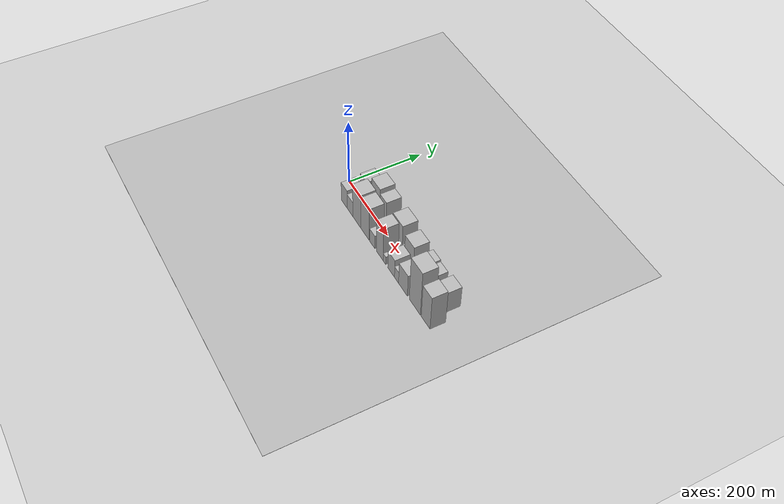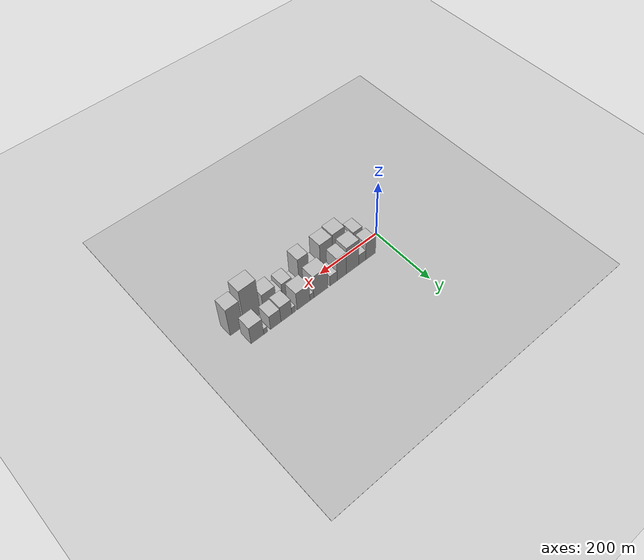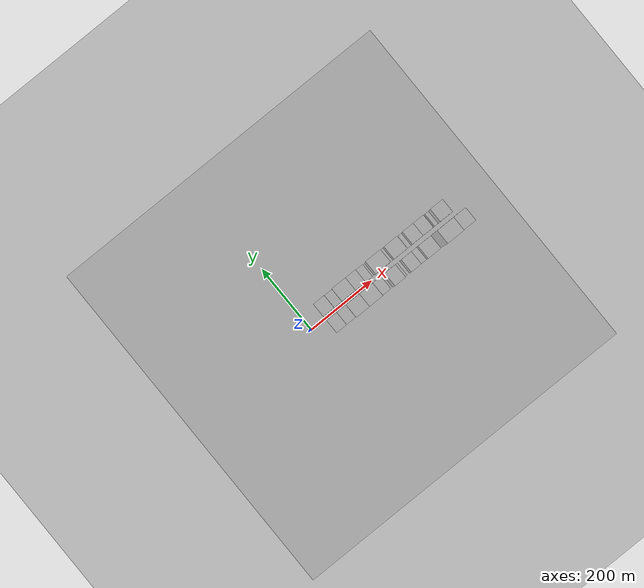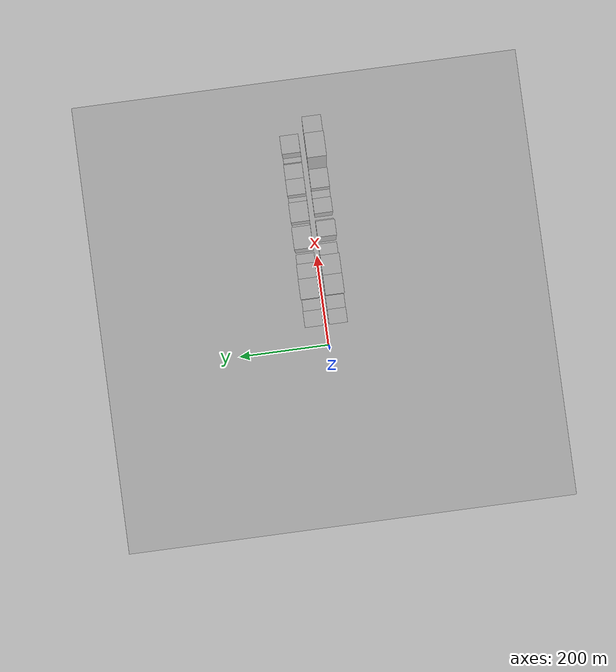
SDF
<?xml version="1.0" encoding="utf-8"?>

<sdf version="1.6">

   <world name="default">

      <gui fullscreen="0">

         <camera name="user_camera">

            <pose>-15 0 4.57585 0 0 0</pose>

            <view_controller>orbit</view_controller>

         </camera>

      </gui>

      <scene>

         <sky>

           <clouds>

             <speed>12</speed>

           </clouds>

         </sky>

         <ambient>0.4 0.4 0.4 1</ambient>

         <background>0.7 0.7 0.7 1</background>

         <shadows>1</shadows>

      </scene>

      <gravity>0 0 -9.8066</gravity>

      <magnetic_field>6e-06 2.3e-05 -4.2e-05</magnetic_field>

      <physics default="0" name="default_physics" type="ode">

         <ode>

            <solver>

               <type>quick</type>

               <iters>10</iters>

               <sor>1.0</sor>

               <use_dynamic_moi_rescaling>0</use_dynamic_moi_rescaling>

            </solver>

            <constraints>

               <cfm>0</cfm>

               <erp>0.2</erp>

               <contact_max_correcting_vel>100</contact_max_correcting_vel>

               <contact_surface_layer>0.001</contact_surface_layer>

            </constraints>

         </ode>

         <max_step_size>0.004</max_step_size>

         <real_time_factor>1</real_time_factor>

         <real_time_update_rate>250</real_time_update_rate>

      </physics>

      <light name="sun" type="directional">

         <cast_shadows>1</cast_shadows>

         <pose>0 0 10 0 0 0</pose>

         <diffuse>0.8 0.8 0.8 1</diffuse>

         <specular>0.2 0.2 0.2 1</specular>

         <attenuation>

            <range>1000</range>

            <constant>0.9</constant>

            <linear>0.01</linear>

            <quadratic>0.001</quadratic>

         </attenuation>

         <direction>-0.5 0.1 -0.9</direction>

      </light>

      <include>

         <name>ground_plane_1</name>

         <uri>model://HANNAS_ground_plane</uri>

         <pose>0 0 0  0 0 0</pose>

      </include>

      <include>

         <name>ground_plane_2</name>

         <uri>model://HANNAS_ground_plane</uri>

         <pose>100 0 0  0 0 0</pose>

      </include>

      <model name="building_1">

         <static>1</static>

         <pose frame="">64.3945 26.0000 0 0.000000 0.000000 1.570796</pose>

         <link name="link">

            <pose frame="">0 0 34.50 0 0 0</pose>

            <collision name="collision">

               <geometry>

                  <box>

                     <size>40.0000 34.7891 69.0000</size>

                  </box>

               </geometry>

               <max_contacts>10</max_contacts>

               <surface>

                  <contact>

                     <ode/>

                  </contact>

                  <bounce/>

                  <friction>

                     <torsional>

                        <ode/>

                     </torsional>

                     <ode/>

                  </friction>

               </surface>

            </collision>

            <visual name="visual">

               <cast_shadows>0</cast_shadows>

               <geometry>

                  <box>

                     <size>40.0000 34.7891 69.0000</size>

                  </box>

               </geometry>

               <material>

                  <script>

                     <uri>model://HANNAS_wall/materials/scripts</uri>

                     <uri>model://HANNAS_wall/materials/textures</uri>

                     <name>vrc/HANNAS_wall</name>

                  </script>

               </material>

            </visual>

            <self_collide>0</self_collide>

            <enable_wind>0</enable_wind>

            <kinematic>0</kinematic>

         </link>

      </model>

      <model name="building_2">

         <static>1</static>

         <pose frame="">94.0296 26.0000 0 0.000000 0.000000 1.570796</pose>

         <link name="link">

            <pose frame="">0 0 21.00 0 0 0</pose>

            <collision name="collision">

               <geometry>

                  <box>

                     <size>40.0000 24.4811 42.0000</size>

                  </box>

               </geometry>

               <max_contacts>10</max_contacts>

               <surface>

                  <contact>

                     <ode/>

                  </contact>

                  <bounce/>

                  <friction>

                     <torsional>

                        <ode/>

                     </torsional>

                     <ode/>

                  </friction>

               </surface>

            </collision>

            <visual name="visual">

               <cast_shadows>0</cast_shadows>

               <geometry>

                  <box>

                     <size>40.0000 24.4811 42.0000</size>

                  </box>

               </geometry>

               <material>

                  <script>

                     <uri>model://HANNAS_wall/materials/scripts</uri>

                     <uri>model://HANNAS_wall/materials/textures</uri>

                     <name>vrc/HANNAS_wall</name>

                  </script>

               </material>

            </visual>

            <self_collide>0</self_collide>

            <enable_wind>0</enable_wind>

            <kinematic>0</kinematic>

         </link>

      </model>

      <model name="building_3">

         <static>1</static>

         <pose frame="">127.7271 26.0000 0 0.000000 0.000000 1.570796</pose>

         <link name="link">

            <pose frame="">0 0 54.00 0 0 0</pose>

            <collision name="collision">

               <geometry>

                  <box>

                     <size>40.0000 42.9138 108.0000</size>

                  </box>

               </geometry>

               <max_contacts>10</max_contacts>

               <surface>

                  <contact>

                     <ode/>

                  </contact>

                  <bounce/>

                  <friction>

                     <torsional>

                        <ode/>

                     </torsional>

                     <ode/>

                  </friction>

               </surface>

            </collision>

            <visual name="visual">

               <cast_shadows>0</cast_shadows>

               <geometry>

                  <box>

                     <size>40.0000 42.9138 108.0000</size>

                  </box>

               </geometry>

               <material>

                  <script>

                     <uri>model://HANNAS_wall/materials/scripts</uri>

                     <uri>model://HANNAS_wall/materials/textures</uri>

                     <name>vrc/HANNAS_wall</name>

                  </script>

               </material>

            </visual>

            <self_collide>0</self_collide>

            <enable_wind>0</enable_wind>

            <kinematic>0</kinematic>

         </link>

      </model>

      <model name="building_4">

         <static>1</static>

         <pose frame="">165.2172 26.0000 0 0.000000 0.000000 1.570796</pose>

         <link name="link">

            <pose frame="">0 0 46.50 0 0 0</pose>

            <collision name="collision">

               <geometry>

                  <box>

                     <size>40.0000 32.0664 93.0000</size>

                  </box>

               </geometry>

               <max_contacts>10</max_contacts>

               <surface>

                  <contact>

                     <ode/>

                  </contact>

                  <bounce/>

                  <friction>

                     <torsional>

                        <ode/>

                     </torsional>

                     <ode/>

                  </friction>

               </surface>

            </collision>

            <visual name="visual">

               <cast_shadows>0</cast_shadows>

               <geometry>

                  <box>

                     <size>40.0000 32.0664 93.0000</size>

                  </box>

               </geometry>

               <material>

                  <script>

                     <uri>model://HANNAS_wall/materials/scripts</uri>

                     <uri>model://HANNAS_wall/materials/textures</uri>

                     <name>vrc/HANNAS_wall</name>

                  </script>

               </material>

            </visual>

            <self_collide>0</self_collide>

            <enable_wind>0</enable_wind>

            <kinematic>0</kinematic>

         </link>

      </model>

      <model name="building_5">

         <static>1</static>

         <pose frame="">193.4105 26.0000 0 0.000000 0.000000 1.570796</pose>

         <link name="link">

            <pose frame="">0 0 21.00 0 0 0</pose>

            <collision name="collision">

               <geometry>

                  <box>

                     <size>40.0000 24.3203 42.0000</size>

                  </box>

               </geometry>

               <max_contacts>10</max_contacts>

               <surface>

                  <contact>

                     <ode/>

                  </contact>

                  <bounce/>

                  <friction>

                     <torsional>

                        <ode/>

                     </torsional>

                     <ode/>

                  </friction>

               </surface>

            </collision>

            <visual name="visual">

               <cast_shadows>0</cast_shadows>

               <geometry>

                  <box>

                     <size>40.0000 24.3203 42.0000</size>

                  </box>

               </geometry>

               <material>

                  <script>

                     <uri>model://HANNAS_wall/materials/scripts</uri>

                     <uri>model://HANNAS_wall/materials/textures</uri>

                     <name>vrc/HANNAS_wall</name>

                  </script>

               </material>

            </visual>

            <self_collide>0</self_collide>

            <enable_wind>0</enable_wind>

            <kinematic>0</kinematic>

         </link>

      </model>

      <model name="building_6">

         <static>1</static>

         <pose frame="">236.4170 26.0000 0 0.000000 0.000000 1.570796</pose>

         <link name="link">

            <pose frame="">0 0 45.00 0 0 0</pose>

            <collision name="collision">

               <geometry>

                  <box>

                     <size>40.0000 47.6927 90.0000</size>

                  </box>

               </geometry>

               <max_contacts>10</max_contacts>

               <surface>

                  <contact>

                     <ode/>

                  </contact>

                  <bounce/>

                  <friction>

                     <torsional>

                        <ode/>

                     </torsional>

                     <ode/>

                  </friction>

               </surface>

            </collision>

            <visual name="visual">

               <cast_shadows>0</cast_shadows>

               <geometry>

                  <box>

                     <size>40.0000 47.6927 90.0000</size>

                  </box>

               </geometry>

               <material>

                  <script>

                     <uri>model://HANNAS_wall/materials/scripts</uri>

                     <uri>model://HANNAS_wall/materials/textures</uri>

                     <name>vrc/HANNAS_wall</name>

                  </script>

               </material>

            </visual>

            <self_collide>0</self_collide>

            <enable_wind>0</enable_wind>

            <kinematic>0</kinematic>

         </link>

      </model>

      <model name="building_7">

         <static>1</static>

         <pose frame="">266.1805 26.0000 0 0.000000 0.000000 1.570796</pose>

         <link name="link">

            <pose frame="">0 0 13.50 0 0 0</pose>

            <collision name="collision">

               <geometry>

                  <box>

                     <size>40.0000 11.8342 27.0000</size>

                  </box>

               </geometry>

               <max_contacts>10</max_contacts>

               <surface>

                  <contact>

                     <ode/>

                  </contact>

                  <bounce/>

                  <friction>

                     <torsional>

                        <ode/>

                     </torsional>

                     <ode/>

                  </friction>

               </surface>

            </collision>

            <visual name="visual">

               <cast_shadows>0</cast_shadows>

               <geometry>

                  <box>

                     <size>40.0000 11.8342 27.0000</size>

                  </box>

               </geometry>

               <material>

                  <script>

                     <uri>model://HANNAS_wall/materials/scripts</uri>

                     <uri>model://HANNAS_wall/materials/textures</uri>

                     <name>vrc/HANNAS_wall</name>

                  </script>

               </material>

            </visual>

            <self_collide>0</self_collide>

            <enable_wind>0</enable_wind>

            <kinematic>0</kinematic>

         </link>

      </model>

      <model name="building_8">

         <static>1</static>

         <pose frame="">293.5687 26.0000 0 0.000000 0.000000 1.570796</pose>

         <link name="link">

            <pose frame="">0 0 36.00 0 0 0</pose>

            <collision name="collision">

               <geometry>

                  <box>

                     <size>40.0000 42.9422 72.0000</size>

                  </box>

               </geometry>

               <max_contacts>10</max_contacts>

               <surface>

                  <contact>

                     <ode/>

                  </contact>

                  <bounce/>

                  <friction>

                     <torsional>

                        <ode/>

                     </torsional>

                     <ode/>

                  </friction>

               </surface>

            </collision>

            <visual name="visual">

               <cast_shadows>0</cast_shadows>

               <geometry>

                  <box>

                     <size>40.0000 42.9422 72.0000</size>

                  </box>

               </geometry>

               <material>

                  <script>

                     <uri>model://HANNAS_wall/materials/scripts</uri>

                     <uri>model://HANNAS_wall/materials/textures</uri>

                     <name>vrc/HANNAS_wall</name>

                  </script>

               </material>

            </visual>

            <self_collide>0</self_collide>

            <enable_wind>0</enable_wind>

            <kinematic>0</kinematic>

         </link>

      </model>

      <model name="building_9">

         <static>1</static>

         <pose frame="">325.8712 26.0000 0 0.000000 0.000000 1.570796</pose>

         <link name="link">

            <pose frame="">0 0 13.50 0 0 0</pose>

            <collision name="collision">

               <geometry>

                  <box>

                     <size>40.0000 11.6629 27.0000</size>

                  </box>

               </geometry>

               <max_contacts>10</max_contacts>

               <surface>

                  <contact>

                     <ode/>

                  </contact>

                  <bounce/>

                  <friction>

                     <torsional>

                        <ode/>

                     </torsional>

                     <ode/>

                  </friction>

               </surface>

            </collision>

            <visual name="visual">

               <cast_shadows>0</cast_shadows>

               <geometry>

                  <box>

                     <size>40.0000 11.6629 27.0000</size>

                  </box>

               </geometry>

               <material>

                  <script>

                     <uri>model://HANNAS_wall/materials/scripts</uri>

                     <uri>model://HANNAS_wall/materials/textures</uri>

                     <name>vrc/HANNAS_wall</name>

                  </script>

               </material>

            </visual>

            <self_collide>0</self_collide>

            <enable_wind>0</enable_wind>

            <kinematic>0</kinematic>

         </link>

      </model>

      <model name="building_10">

         <static>1</static>

         <pose frame="">349.0239 26.0000 0 0.000000 0.000000 1.570796</pose>

         <link name="link">

            <pose frame="">0 0 31.50 0 0 0</pose>

            <collision name="collision">

               <geometry>

                  <box>

                     <size>40.0000 34.6425 63.0000</size>

                  </box>

               </geometry>

               <max_contacts>10</max_contacts>

               <surface>

                  <contact>

                     <ode/>

                  </contact>

                  <bounce/>

                  <friction>

                     <torsional>

                        <ode/>

                     </torsional>

                     <ode/>

                  </friction>

               </surface>

            </collision>

            <visual name="visual">

               <cast_shadows>0</cast_shadows>

               <geometry>

                  <box>

                     <size>40.0000 34.6425 63.0000</size>

                  </box>

               </geometry>

               <material>

                  <script>

                     <uri>model://HANNAS_wall/materials/scripts</uri>

                     <uri>model://HANNAS_wall/materials/textures</uri>

                     <name>vrc/HANNAS_wall</name>

                  </script>

               </material>

            </visual>

            <self_collide>0</self_collide>

            <enable_wind>0</enable_wind>

            <kinematic>0</kinematic>

         </link>

      </model>

      <model name="building_11">

         <static>1</static>

         <pose frame="">383.0467 26.0000 0 0.000000 0.000000 1.570796</pose>

         <link name="link">

            <pose frame="">0 0 28.50 0 0 0</pose>

            <collision name="collision">

               <geometry>

                  <box>

                     <size>40.0000 33.4032 57.0000</size>

                  </box>

               </geometry>

               <max_contacts>10</max_contacts>

               <surface>

                  <contact>

                     <ode/>

                  </contact>

                  <bounce/>

                  <friction>

                     <torsional>

                        <ode/>

                     </torsional>

                     <ode/>

                  </friction>

               </surface>

            </collision>

            <visual name="visual">

               <cast_shadows>0</cast_shadows>

               <geometry>

                  <box>

                     <size>40.0000 33.4032 57.0000</size>

                  </box>

               </geometry>

               <material>

                  <script>

                     <uri>model://HANNAS_wall/materials/scripts</uri>

                     <uri>model://HANNAS_wall/materials/textures</uri>

                     <name>vrc/HANNAS_wall</name>

                  </script>

               </material>

            </visual>

            <self_collide>0</self_collide>

            <enable_wind>0</enable_wind>

            <kinematic>0</kinematic>

         </link>

      </model>

      <model name="building_12">

         <static>1</static>

         <pose frame="">414.4743 26.0000 0 0.000000 0.000000 1.570796</pose>

         <link name="link">

            <pose frame="">0 0 12.00 0 0 0</pose>

            <collision name="collision">

               <geometry>

                  <box>

                     <size>40.0000 11.4518 24.0000</size>

                  </box>

               </geometry>

               <max_contacts>10</max_contacts>

               <surface>

                  <contact>

                     <ode/>

                  </contact>

                  <bounce/>

                  <friction>

                     <torsional>

                        <ode/>

                     </torsional>

                     <ode/>

                  </friction>

               </surface>

            </collision>

            <visual name="visual">

               <cast_shadows>0</cast_shadows>

               <geometry>

                  <box>

                     <size>40.0000 11.4518 24.0000</size>

                  </box>

               </geometry>

               <material>

                  <script>

                     <uri>model://HANNAS_wall/materials/scripts</uri>

                     <uri>model://HANNAS_wall/materials/textures</uri>

                     <name>vrc/HANNAS_wall</name>

                  </script>

               </material>

            </visual>

            <self_collide>0</self_collide>

            <enable_wind>0</enable_wind>

            <kinematic>0</kinematic>

         </link>

      </model>

      <model name="building_13">

         <static>1</static>

         <pose frame="">439.9525 26.0000 0 0.000000 0.000000 1.570796</pose>

         <link name="link">

            <pose frame="">0 0 34.50 0 0 0</pose>

            <collision name="collision">

               <geometry>

                  <box>

                     <size>40.0000 39.5047 69.0000</size>

                  </box>

               </geometry>

               <max_contacts>10</max_contacts>

               <surface>

                  <contact>

                     <ode/>

                  </contact>

                  <bounce/>

                  <friction>

                     <torsional>

                        <ode/>

                     </torsional>

                     <ode/>

                  </friction>

               </surface>

            </collision>

            <visual name="visual">

               <cast_shadows>0</cast_shadows>

               <geometry>

                  <box>

                     <size>40.0000 39.5047 69.0000</size>

                  </box>

               </geometry>

               <material>

                  <script>

                     <uri>model://HANNAS_wall/materials/scripts</uri>

                     <uri>model://HANNAS_wall/materials/textures</uri>

                     <name>vrc/HANNAS_wall</name>

                  </script>

               </material>

            </visual>

            <self_collide>0</self_collide>

            <enable_wind>0</enable_wind>

            <kinematic>0</kinematic>

         </link>

      </model>

      <model name="building_14">

         <static>1</static>

         <pose frame="">63.0424 -26.0000 0 0.000000 0.000000 1.570796</pose>

         <link name="link">

            <pose frame="">0 0 31.50 0 0 0</pose>

            <collision name="collision">

               <geometry>

                  <box>

                     <size>40.0000 32.0847 63.0000</size>

                  </box>

               </geometry>

               <max_contacts>10</max_contacts>

               <surface>

                  <contact>

                     <ode/>

                  </contact>

                  <bounce/>

                  <friction>

                     <torsional>

                        <ode/>

                     </torsional>

                     <ode/>

                  </friction>

               </surface>

            </collision>

            <visual name="visual">

               <cast_shadows>0</cast_shadows>

               <geometry>

                  <box>

                     <size>40.0000 32.0847 63.0000</size>

                  </box>

               </geometry>

               <material>

                  <script>

                     <uri>model://HANNAS_wall/materials/scripts</uri>

                     <uri>model://HANNAS_wall/materials/textures</uri>

                     <name>vrc/HANNAS_wall</name>

                  </script>

               </material>

            </visual>

            <self_collide>0</self_collide>

            <enable_wind>0</enable_wind>

            <kinematic>0</kinematic>

         </link>

      </model>

      <model name="building_15">

         <static>1</static>

         <pose frame="">93.8723 -26.0000 0 0.000000 0.000000 1.570796</pose>

         <link name="link">

            <pose frame="">0 0 25.50 0 0 0</pose>

            <collision name="collision">

               <geometry>

                  <box>

                     <size>40.0000 29.5751 51.0000</size>

                  </box>

               </geometry>

               <max_contacts>10</max_contacts>

               <surface>

                  <contact>

                     <ode/>

                  </contact>

                  <bounce/>

                  <friction>

                     <torsional>

                        <ode/>

                     </torsional>

                     <ode/>

                  </friction>

               </surface>

            </collision>

            <visual name="visual">

               <cast_shadows>0</cast_shadows>

               <geometry>

                  <box>

                     <size>40.0000 29.5751 51.0000</size>

                  </box>

               </geometry>

               <material>

                  <script>

                     <uri>model://HANNAS_wall/materials/scripts</uri>

                     <uri>model://HANNAS_wall/materials/textures</uri>

                     <name>vrc/HANNAS_wall</name>

                  </script>

               </material>

            </visual>

            <self_collide>0</self_collide>

            <enable_wind>0</enable_wind>

            <kinematic>0</kinematic>

         </link>

      </model>

      <model name="building_16">

         <static>1</static>

         <pose frame="">129.6067 -26.0000 0 0.000000 0.000000 1.570796</pose>

         <link name="link">

            <pose frame="">0 0 57.00 0 0 0</pose>

            <collision name="collision">

               <geometry>

                  <box>

                     <size>40.0000 41.8939 114.0000</size>

                  </box>

               </geometry>

               <max_contacts>10</max_contacts>

               <surface>

                  <contact>

                     <ode/>

                  </contact>

                  <bounce/>

                  <friction>

                     <torsional>

                        <ode/>

                     </torsional>

                     <ode/>

                  </friction>

               </surface>

            </collision>

            <visual name="visual">

               <cast_shadows>0</cast_shadows>

               <geometry>

                  <box>

                     <size>40.0000 41.8939 114.0000</size>

                  </box>

               </geometry>

               <material>

                  <script>

                     <uri>model://HANNAS_wall/materials/scripts</uri>

                     <uri>model://HANNAS_wall/materials/textures</uri>

                     <name>vrc/HANNAS_wall</name>

                  </script>

               </material>

            </visual>

            <self_collide>0</self_collide>

            <enable_wind>0</enable_wind>

            <kinematic>0</kinematic>

         </link>

      </model>

      <model name="building_17">

         <static>1</static>

         <pose frame="">171.5663 -26.0000 0 0.000000 0.000000 1.570796</pose>

         <link name="link">

            <pose frame="">0 0 54.00 0 0 0</pose>

            <collision name="collision">

               <geometry>

                  <box>

                     <size>40.0000 42.0252 108.0000</size>

                  </box>

               </geometry>

               <max_contacts>10</max_contacts>

               <surface>

                  <contact>

                     <ode/>

                  </contact>

                  <bounce/>

                  <friction>

                     <torsional>

                        <ode/>

                     </torsional>

                     <ode/>

                  </friction>

               </surface>

            </collision>

            <visual name="visual">

               <cast_shadows>0</cast_shadows>

               <geometry>

                  <box>

                     <size>40.0000 42.0252 108.0000</size>

                  </box>

               </geometry>

               <material>

                  <script>

                     <uri>model://HANNAS_wall/materials/scripts</uri>

                     <uri>model://HANNAS_wall/materials/textures</uri>

                     <name>vrc/HANNAS_wall</name>

                  </script>

               </material>

            </visual>

            <self_collide>0</self_collide>

            <enable_wind>0</enable_wind>

            <kinematic>0</kinematic>

         </link>

      </model>

      <model name="building_18">

         <static>1</static>

         <pose frame="">208.8140 -26.0000 0 0.000000 0.000000 1.570796</pose>

         <link name="link">

            <pose frame="">0 0 22.50 0 0 0</pose>

            <collision name="collision">

               <geometry>

                  <box>

                     <size>40.0000 26.4703 45.0000</size>

                  </box>

               </geometry>

               <max_contacts>10</max_contacts>

               <surface>

                  <contact>

                     <ode/>

                  </contact>

                  <bounce/>

                  <friction>

                     <torsional>

                        <ode/>

                     </torsional>

                     <ode/>

                  </friction>

               </surface>

            </collision>

            <visual name="visual">

               <cast_shadows>0</cast_shadows>

               <geometry>

                  <box>

                     <size>40.0000 26.4703 45.0000</size>

                  </box>

               </geometry>

               <material>

                  <script>

                     <uri>model://HANNAS_wall/materials/scripts</uri>

                     <uri>model://HANNAS_wall/materials/textures</uri>

                     <name>vrc/HANNAS_wall</name>

                  </script>

               </material>

            </visual>

            <self_collide>0</self_collide>

            <enable_wind>0</enable_wind>

            <kinematic>0</kinematic>

         </link>

      </model>

      <model name="building_19">

         <static>1</static>

         <pose frame="">246.8575 -26.0000 0 0.000000 0.000000 1.570796</pose>

         <link name="link">

            <pose frame="">0 0 55.50 0 0 0</pose>

            <collision name="collision">

               <geometry>

                  <box>

                     <size>40.0000 33.6168 111.0000</size>

                  </box>

               </geometry>

               <max_contacts>10</max_contacts>

               <surface>

                  <contact>

                     <ode/>

                  </contact>

                  <bounce/>

                  <friction>

                     <torsional>

                        <ode/>

                     </torsional>

                     <ode/>

                  </friction>

               </surface>

            </collision>

            <visual name="visual">

               <cast_shadows>0</cast_shadows>

               <geometry>

                  <box>

                     <size>40.0000 33.6168 111.0000</size>

                  </box>

               </geometry>

               <material>

                  <script>

                     <uri>model://HANNAS_wall/materials/scripts</uri>

                     <uri>model://HANNAS_wall/materials/textures</uri>

                     <name>vrc/HANNAS_wall</name>

                  </script>

               </material>

            </visual>

            <self_collide>0</self_collide>

            <enable_wind>0</enable_wind>

            <kinematic>0</kinematic>

         </link>

      </model>

      <model name="building_20">

         <static>1</static>

         <pose frame="">269.9512 -26.0000 0 0.000000 0.000000 1.570796</pose>

         <link name="link">

            <pose frame="">0 0 13.50 0 0 0</pose>

            <collision name="collision">

               <geometry>

                  <box>

                     <size>40.0000 12.5706 27.0000</size>

                  </box>

               </geometry>

               <max_contacts>10</max_contacts>

               <surface>

                  <contact>

                     <ode/>

                  </contact>

                  <bounce/>

                  <friction>

                     <torsional>

                        <ode/>

                     </torsional>

                     <ode/>

                  </friction>

               </surface>

            </collision>

            <visual name="visual">

               <cast_shadows>0</cast_shadows>

               <geometry>

                  <box>

                     <size>40.0000 12.5706 27.0000</size>

                  </box>

               </geometry>

               <material>

                  <script>

                     <uri>model://HANNAS_wall/materials/scripts</uri>

                     <uri>model://HANNAS_wall/materials/textures</uri>

                     <name>vrc/HANNAS_wall</name>

                  </script>

               </material>

            </visual>

            <self_collide>0</self_collide>

            <enable_wind>0</enable_wind>

            <kinematic>0</kinematic>

         </link>

      </model>

      <model name="building_21">

         <static>1</static>

         <pose frame="">302.5528 -26.0000 0 0.000000 0.000000 1.570796</pose>

         <link name="link">

            <pose frame="">0 0 30.00 0 0 0</pose>

            <collision name="collision">

               <geometry>

                  <box>

                     <size>40.0000 32.6326 60.0000</size>

                  </box>

               </geometry>

               <max_contacts>10</max_contacts>

               <surface>

                  <contact>

                     <ode/>

                  </contact>

                  <bounce/>

                  <friction>

                     <torsional>

                        <ode/>

                     </torsional>

                     <ode/>

                  </friction>

               </surface>

            </collision>

            <visual name="visual">

               <cast_shadows>0</cast_shadows>

               <geometry>

                  <box>

                     <size>40.0000 32.6326 60.0000</size>

                  </box>

               </geometry>

               <material>

                  <script>

                     <uri>model://HANNAS_wall/materials/scripts</uri>

                     <uri>model://HANNAS_wall/materials/textures</uri>

                     <name>vrc/HANNAS_wall</name>

                  </script>

               </material>

            </visual>

            <self_collide>0</self_collide>

            <enable_wind>0</enable_wind>

            <kinematic>0</kinematic>

         </link>

      </model>

      <model name="building_22">

         <static>1</static>

         <pose frame="">328.7143 -26.0000 0 0.000000 0.000000 1.570796</pose>

         <link name="link">

            <pose frame="">0 0 19.50 0 0 0</pose>

            <collision name="collision">

               <geometry>

                  <box>

                     <size>40.0000 19.6904 39.0000</size>

                  </box>

               </geometry>

               <max_contacts>10</max_contacts>

               <surface>

                  <contact>

                     <ode/>

                  </contact>

                  <bounce/>

                  <friction>

                     <torsional>

                        <ode/>

                     </torsional>

                     <ode/>

                  </friction>

               </surface>

            </collision>

            <visual name="visual">

               <cast_shadows>0</cast_shadows>

               <geometry>

                  <box>

                     <size>40.0000 19.6904 39.0000</size>

                  </box>

               </geometry>

               <material>

                  <script>

                     <uri>model://HANNAS_wall/materials/scripts</uri>

                     <uri>model://HANNAS_wall/materials/textures</uri>

                     <name>vrc/HANNAS_wall</name>

                  </script>

               </material>

            </visual>

            <self_collide>0</self_collide>

            <enable_wind>0</enable_wind>

            <kinematic>0</kinematic>

         </link>

      </model>

      <model name="building_23">

         <static>1</static>

         <pose frame="">359.3304 -26.0000 0 0.000000 0.000000 1.570796</pose>

         <link name="link">

            <pose frame="">0 0 36.00 0 0 0</pose>

            <collision name="collision">

               <geometry>

                  <box>

                     <size>40.0000 41.5418 72.0000</size>

                  </box>

               </geometry>

               <max_contacts>10</max_contacts>

               <surface>

                  <contact>

                     <ode/>

                  </contact>

                  <bounce/>

                  <friction>

                     <torsional>

                        <ode/>

                     </torsional>

                     <ode/>

                  </friction>

               </surface>

            </collision>

            <visual name="visual">

               <cast_shadows>0</cast_shadows>

               <geometry>

                  <box>

                     <size>40.0000 41.5418 72.0000</size>

                  </box>

               </geometry>

               <material>

                  <script>

                     <uri>model://HANNAS_wall/materials/scripts</uri>

                     <uri>model://HANNAS_wall/materials/textures</uri>

                     <name>vrc/HANNAS_wall</name>

                  </script>

               </material>

            </visual>

            <self_collide>0</self_collide>

            <enable_wind>0</enable_wind>

            <kinematic>0</kinematic>

         </link>

      </model>

      <model name="building_24">

         <static>1</static>

         <pose frame="">414.5254 -26.0000 0 0.000000 0.000000 1.570796</pose>

         <link name="link">

            <pose frame="">0 0 73.50 0 0 0</pose>

            <collision name="collision">

               <geometry>

                  <box>

                     <size>40.0000 50.8483 147.0000</size>

                  </box>

               </geometry>

               <max_contacts>10</max_contacts>

               <surface>

                  <contact>

                     <ode/>

                  </contact>

                  <bounce/>

                  <friction>

                     <torsional>

                        <ode/>

                     </torsional>

                     <ode/>

                  </friction>

               </surface>

            </collision>

            <visual name="visual">

               <cast_shadows>0</cast_shadows>

               <geometry>

                  <box>

                     <size>40.0000 50.8483 147.0000</size>

                  </box>

               </geometry>

               <material>

                  <script>

                     <uri>model://HANNAS_wall/materials/scripts</uri>

                     <uri>model://HANNAS_wall/materials/textures</uri>

                     <name>vrc/HANNAS_wall</name>

                  </script>

               </material>

            </visual>

            <self_collide>0</self_collide>

            <enable_wind>0</enable_wind>

            <kinematic>0</kinematic>

         </link>

      </model>

      <model name="building_25">

         <static>1</static>

         <pose frame="">463.5818 -26.0000 0 0.000000 0.000000 1.570796</pose>

         <link name="link">

            <pose frame="">0 0 55.50 0 0 0</pose>

            <collision name="collision">

               <geometry>

                  <box>

                     <size>40.0000 39.2645 111.0000</size>

                  </box>

               </geometry>

               <max_contacts>10</max_contacts>

               <surface>

                  <contact>

                     <ode/>

                  </contact>

                  <bounce/>

                  <friction>

                     <torsional>

                        <ode/>

                     </torsional>

                     <ode/>

                  </friction>

               </surface>

            </collision>

            <visual name="visual">

               <cast_shadows>0</cast_shadows>

               <geometry>

                  <box>

                     <size>40.0000 39.2645 111.0000</size>

                  </box>

               </geometry>

               <material>

                  <script>

                     <uri>model://HANNAS_wall/materials/scripts</uri>

                     <uri>model://HANNAS_wall/materials/textures</uri>

                     <name>vrc/HANNAS_wall</name>

                  </script>

               </material>

            </visual>

            <self_collide>0</self_collide>

            <enable_wind>0</enable_wind>

            <kinematic>0</kinematic>

         </link>

      </model>

   </world>

</sdf>

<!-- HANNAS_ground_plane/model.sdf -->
<sdf version="1.4">
<model name="HANNAS_ground_plane">
  <static>true</static>
    <link name="link">
      <collision name="collision">
        <geometry>
          <plane>
            <normal>0 0 1</normal>
            <size>1000 1000</size>
          </plane>
        </geometry>
        <surface>
          <friction>
            <ode>
              <mu>100</mu>
              <mu2>50</mu2>
            </ode>
          </friction>
        </surface>
      </collision>
      <visual name="visual">
        <cast_shadows>false</cast_shadows>
        <geometry>
          <plane>
            <normal>0 0 1</normal>
            <size>1000 1000</size>
          </plane>
        </geometry>
        <material>
          <script>
            <uri>model://HANNAS_ground_plane/materials/scripts/HANNAS_ground_plane.material</uri>
	    <uri>model://HANNAS_ground_plane/materials/textures</uri>
            <name>HANNASGroundPlane/Image</name>
          </script>
        </material>
      </visual>
    </link>
  </model>
</sdf>
